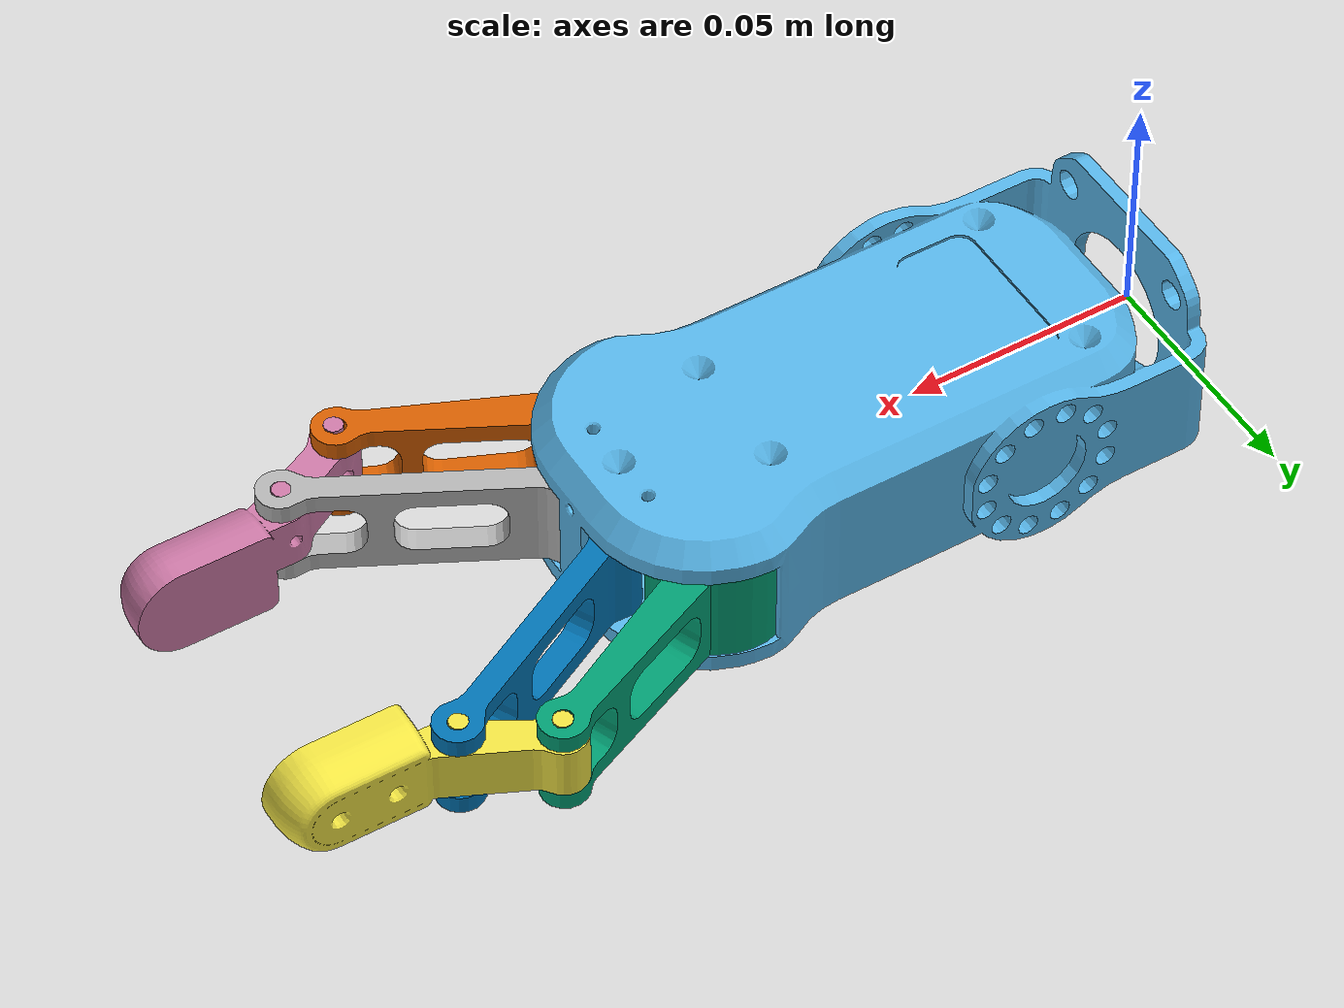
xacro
<?xml version="1.0" ?>
<robot name="rg2" xmlns:xacro="http://ros.org/wiki/xacro">

    <xacro:property name="pi" value="3.141592654" />
    <xacro:include filename="$(find rg2_description)/urdf/rg2.gazebo.xacro" />
    <xacro:include filename="$(find rg2_description)/urdf/rg2.transmissions.xacro" />

    <link name="rg2_base_link">
    </link>
    <joint name="base_fixed_joint" type="fixed">
        <parent link="rg2_base_link"/>
        <child link="hand_link"/>
        <origin xyz="0.000 0.000 0.000" rpy="0 0 0"/>
    </joint>
    <link name="hand_link">
        <collision>
            <origin xyz="0.00 0.00 0.00" rpy="0.00 0.00 0.00"/>
            <geometry>
                <mesh filename="package://rg2_description/meshes/collision/RG2_Hand_col.STL"/>
            </geometry>
        </collision>
        <visual>
            <origin xyz="0.00 0.00 0.00" rpy="0.00 0.00 0.00"/>
            <geometry>
                <mesh filename="package://rg2_description/meshes/visual/RG2_Hand_vis.STL"/>
            </geometry>
        </visual>
        <inertial>
            <origin xyz="0.061902 0.000129 -0.000005" rpy="0.00 0.00 0.00"/>
            <mass value="1.684558"/>
            <inertia ixx="0.000862" ixy="0.000000" ixz="0.000000"
                     iyy="0.002401" iyz="-0.000001"
                     izz="0.002620" />
        </inertial>
    </link>
    <!-- Jari Kiri -->
    <joint name="gripper_joint" type="revolute">
        <parent link="hand_link"/>
        <child link="l_moment_arm_link"/>
        <origin xyz="0.105 0.017 0.010" rpy="0 0 0"/>
        <axis xyz="0 0 1"/>
        <limit velocity="3.14" effort="10.6" lower="${-0.45}" upper="${pi*0.5}" />
        <dynamics damping="0.1" friction="0.0" />
        <implicitSpringDamper>True</implicitSpringDamper>
    </joint>
    <xacro:insert_transmission name="gripper_joint" />
    <link name="l_moment_arm_link">
        <collision>
            <origin xyz="0.00 0.00 0.00" rpy="0.00 0.00 0.00"/>
            <geometry>
                <mesh filename="package://rg2_description/meshes/collision/RG2_LeftMomentArm_col.STL"/>
            </geometry>
        </collision>
        <visual>
            <origin xyz="0.00 0.00 0.00" rpy="0.00 0.00 0.00"/>
            <geometry>
                <mesh filename="package://rg2_description/meshes/visual/RG2_LeftMomentArm_vis.STL"/>
            </geometry>
        </visual>
        <inertial>
            <origin xyz="0.017004 0.006397 -0.010300" rpy="0.00 0.00 0.00"/>
            <mass value="0.160209"/>
            <inertia ixx="0.000023" ixy="0.000019" ixz="0.000000"
                     iyy="0.000072" iyz="0.000000"
                     izz="0.000083" />
        </inertial>
    </link>
    <joint name="l_finger_2_joint" type="revolute">
        <parent link="l_moment_arm_link"/>
        <child link="l_finger_link"/>
        <origin xyz="0.049 0.026 0.000" rpy="0 0 0"/>
        <axis xyz="0 0 1"/>
        <limit velocity="3.14" effort="10.6" lower="${-pi*0.5}" upper="${pi*0.5}" />
        <mimic joint="gripper_joint" multiplier="-1"/>
        <dynamics damping="0.1" friction="0.0" />
        <implicitSpringDamper >True</implicitSpringDamper>
    </joint>
    <xacro:insert_transmission name="l_finger_2_joint" /> -->
    <xacro:mimic_joint_plugin_gazebo name_prefix="l_finger_2_joint"
                                     parent_joint="gripper_joint"
                                     mimic_joint="l_finger_2_joint"
                                     has_pid="false"
                                     multiplier="-1.0"
                                     max_effort="10.6" />
    <link name="l_finger_link">
        <collision>
            <origin xyz="0.00 0.00 0.00" rpy="0.00 0.00 0.00"/>
            <geometry>
                <mesh filename="package://rg2_description/meshes/collision/RG2_LeftFinger_col.STL"/>
            </geometry>
        </collision>
        <visual>
            <origin xyz="0.00 0.00 0.00" rpy="0.00 0.00 0.00"/>
            <geometry>
                <mesh filename="package://rg2_description/meshes/visual/RG2_LeftFinger_vis.STL"/>
            </geometry>
        </visual>
        <inertial>
            <origin xyz="0.024695 -0.010178 -0.010001" rpy="0.00 0.00 0.00"/>
            <mass value="0.081638"/>
            <inertia ixx="0.000006" ixy="-0.000005" ixz="0.000000"
                     iyy="0.000025" iyz="0.000000"
                     izz="0.000026" />
        </inertial>
    </link>
    <joint name="l_finger_passive_joint" type="revolute">
        <parent link="hand_link"/>
        <child link="l_truss_arm_link"/>
        <origin xyz="0.122 0.008 0.010" rpy="0 0 0"/>
        <axis xyz="0 0 1"/>
        <limit velocity="3.14" effort="10.6" lower="${-pi*0.5}" upper="${pi*0.5}" />
        <mimic joint="gripper_joint" multiplier="1"/>
        <dynamics damping="0.1" friction="0.0" />
        <implicitSpringDamper>True</implicitSpringDamper>
    </joint>
    <xacro:insert_transmission name="l_finger_passive_joint" /> -->
    <xacro:mimic_joint_plugin_gazebo name_prefix="l_finger_passive_joint"
                                     parent_joint="gripper_joint"
                                     mimic_joint="l_finger_passive_joint"
                                     has_pid="false"
                                     multiplier="1.0"
                                     max_effort="10.6" />
    <link name="l_truss_arm_link">
        <collision>
            <origin xyz="0.00 0.00 0.00" rpy="0.00 0.00 0.00"/>
            <geometry>
                <mesh filename="package://rg2_description/meshes/collision/RG2_LeftTrussArm_col.STL"/>
            </geometry>
        </collision>
        <visual>
            <origin xyz="0.00 0.00 0.00" rpy="0.00 0.00 0.00"/>
            <geometry>
                <mesh filename="package://rg2_description/meshes/visual/RG2_LeftTrussArm_vis.STL"/>
            </geometry>
        </visual>
        <inertial>
            <origin xyz="0.023075 0.012136 -0.010000" rpy="0.00 0.00 0.00"/>
            <mass value="0.065927"/>
            <inertia ixx="0.000010" ixy="0.000010" ixz="0.000000"
                     iyy="0.000024" iyz="0.000000"
                     izz="0.000025" />
        </inertial>
    </link>
    <!-- Jari Kanan -->
    <joint name="r_finger_1_joint" type="revolute">
        <parent link="hand_link"/>
        <child link="r_moment_arm_link"/>
        <origin xyz="0.105 -0.017 0.010" rpy="0 0 0"/>
        <axis xyz="0 0 1"/>
        <limit velocity="3.14" effort="10.6" lower="${-pi*0.5}" upper="${pi*0.5}" />
        <mimic joint="gripper_joint" multiplier="-1"/>
        <dynamics damping="0.1" friction="0.0" />
        <implicitSpringDamper>True</implicitSpringDamper>
    </joint>
     <xacro:insert_transmission name="r_finger_1_joint" /> -->
    <xacro:mimic_joint_plugin_gazebo name_prefix="r_finger_1_joint"
                                     parent_joint="gripper_joint"
                                     mimic_joint="r_finger_1_joint"
                                     has_pid="false"
                                     multiplier="-1.0"
                                     max_effort="10.6" />
    <link name="r_moment_arm_link">
        <collision>
            <origin xyz="0.00 0.00 0.00" rpy="0.00 0.00 0.00"/>
            <geometry>
                <mesh filename="package://rg2_description/meshes/collision/RG2_RightMomentArm_col.STL"/>
            </geometry>
        </collision>
        <visual>
            <origin xyz="0.00 0.00 0.00" rpy="0.00 0.00 0.00"/>
            <geometry>
                <mesh filename="package://rg2_description/meshes/visual/RG2_RightMomentArm_vis.STL"/>
            </geometry>
        </visual>
        <inertial>
            <origin xyz="0.017004 -0.006397 -0.010300" rpy="0.00 0.00 0.00"/>
            <mass value="0.160209"/>
            <inertia ixx="0.000023" ixy="-0.000019" ixz="0.000000"
                     iyy="0.000072" iyz="0.000000"
                     izz="0.000083" />
        </inertial>
    </link>
    <joint name="r_finger_2_joint" type="revolute">
        <parent link="r_moment_arm_link"/>
        <child link="r_finger_link"/>
        <origin xyz="0.049 -0.026 0.000" rpy="0 0 0"/>
        <axis xyz="0 0 1"/>
        <limit velocity="3.14" effort="10.6" lower="${-pi*0.5}" upper="${pi*0.5}" />
        <mimic joint="gripper_joint" multiplier="1"/>
        <dynamics damping="0.1" friction="0.0" />
        <implicitSpringDamper>True</implicitSpringDamper>
    </joint>
    <xacro:insert_transmission name="r_finger_2_joint" /> -->
    <xacro:mimic_joint_plugin_gazebo name_prefix="r_finger_2_joint"
                                     parent_joint="gripper_joint"
                                     mimic_joint="r_finger_2_joint"
                                     has_pid="false"
                                     multiplier="1.0"
                                     max_effort="10.6" />
    <link name="r_finger_link">
        <collision>
            <origin xyz="0.00 0.00 0.00" rpy="0.00 0.00 0.00"/>
            <geometry>
                <mesh filename="package://rg2_description/meshes/collision/RG2_RightFinger_col.STL"/>
            </geometry>
        </collision>
        <visual>
            <origin xyz="0.00 0.00 0.00" rpy="0.00 0.00 0.00"/>
            <geometry>
                <mesh filename="package://rg2_description/meshes/visual/RG2_RightFinger_vis.STL"/>
            </geometry>
        </visual>
        <inertial>
            <origin xyz="0.024695 0.010178 -0.010000" rpy="0.00 0.00 0.00"/>
            <mass value="0.081637"/>
            <inertia ixx="0.000006" ixy="0.000005" ixz="0.000000"
                     iyy="0.000025" iyz="0.000000"
                     izz="0.000026" />
        </inertial>
    </link>
    <joint name="r_finger_passive_joint" type="revolute">
        <parent link="hand_link"/>
        <child link="r_truss_arm_link"/>
        <origin xyz="0.122 -0.008 0.010" rpy="0 0 0"/>
        <axis xyz="0 0 1"/>
        <limit velocity="3.14" effort="10.6" lower="${-pi*0.5}" upper="${pi*0.5}" />
        <mimic joint="gripper_joint" multiplier="-1"/>
        <dynamics damping="0.1" friction="0.0" />
        <implicitSpringDamper>True</implicitSpringDamper>
    </joint>
    <xacro:insert_transmission name="r_finger_passive_joint" /> -->
    <xacro:mimic_joint_plugin_gazebo name_prefix="r_finger_passive_joint"
                                     parent_joint="gripper_joint"
                                     mimic_joint="r_finger_passive_joint"
                                     has_pid="false"
                                     multiplier="-1.0"
                                     max_effort="10.6" />
    <link name="r_truss_arm_link">
        <collision>
            <origin xyz="0.00 0.00 0.00" rpy="0.00 0.00 0.00"/>
            <geometry>
                <mesh filename="package://rg2_description/meshes/collision/RG2_RightTrussArm_col.STL"/>
            </geometry>
        </collision>
        <visual>
            <origin xyz="0.00 0.00 0.00" rpy="0.00 0.00 0.00"/>
            <geometry>
                <mesh filename="package://rg2_description/meshes/visual/RG2_RightTrussArm_vis.STL"/>
            </geometry>
        </visual>
        <inertial>
            <origin xyz="0.023075 -0.012136 -0.010000" rpy="0.00 0.00 0.00"/>
            <mass value="0.065927"/>
            <inertia ixx="0.000010" ixy="-0.000010" ixz="0.000000"
                     iyy="0.000024" iyz="0.000000"
                     izz="0.000025" />
        </inertial>
    </link>
</robot>
